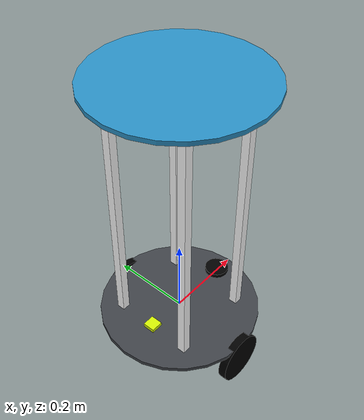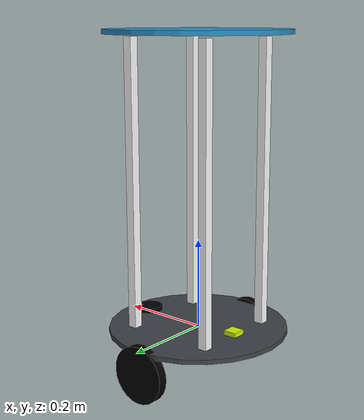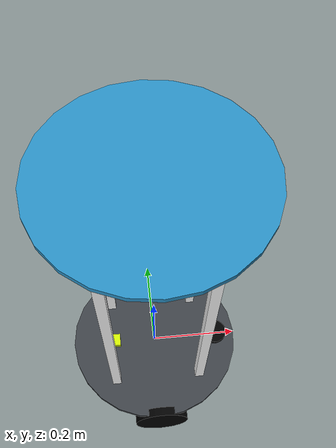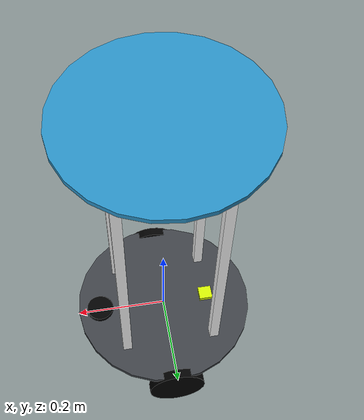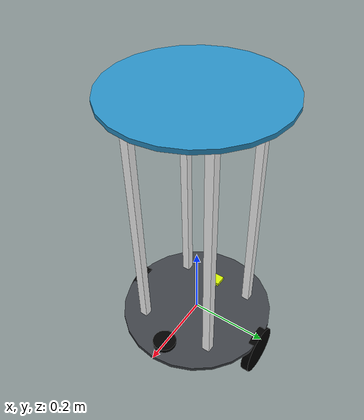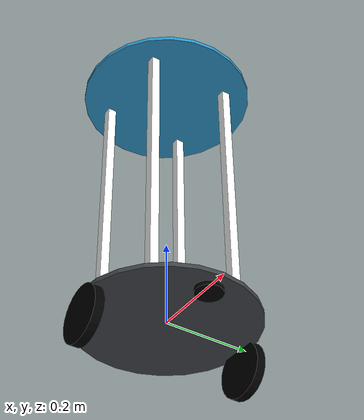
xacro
<?xml version="1.0"?>
<robot name="robot" xmlns:xacro="http://ros.org/wiki/xacro">
  <!-- Base footprint -->
  <link name="base_footprint" />

  <joint name="base_joint" type="fixed">
    <parent link="base_footprint" />
    <child link="base_link" />
    <origin xyz="0 0 0" rpy="0 0 0" />
  </joint>

  <link name="base_link">
    <visual>
      <origin xyz="0 0 0" rpy="0 0 0" />
      <geometry>
        <cylinder radius="0.2" length="0.01" />
      </geometry>
      <material name="base_link_material">
        <color rgba="0.246 0.262 0.283 1" />
      </material>
    </visual>
    <collision>
      <origin xyz="0 0 0" rpy="0 0 0" />
      <geometry>
        <cylinder radius="0.2" length="0.01" />
      </geometry>
    </collision>
    <inertial>
      <origin xyz="0 0 0" rpy="0 0 0" />
      <mass value="0.1" />
      <inertia ixx="0.001" ixy="0" ixz="0" iyy="0.001" iyz="0" izz="0.001" />
    </inertial>
  </link>

  <xacro:macro name="add_box_pillar" params="name x y z">
    <joint name="base_link_to_${name}" type="fixed">
      <parent link="base_link" />
      <child link="${name}" />
      <origin xyz="${x} ${y} ${z}" rpy="0 0 0" />
    </joint>
    <link name="${name}">
      <visual>
        <origin xyz="0 0 0" rpy="0 0 0" />
        <geometry>
          <box size="0.02 0.02 0.64" />
        </geometry>
        <material name="${name}_material">
          <color rgba="1 1 1 1" />
        </material>
      </visual>
    </link>
  </xacro:macro>

  <!-- radar -->
    <joint name="base_link_to_radar" type="fixed">
      <parent link="base_link" />
      <child link="radar" />
    <origin xyz="0.15 0 0" rpy="0 0 0" />
  </joint>
  <link name="imu">
    <visual>
      <origin xyz="0 0 0" rpy="0 0 0" />
      <geometry>
        <box size="0.03 0.03 0.01" />
      </geometry>
      <material name="radar_material">
        <color rgba="0.84 0.96 0.01 1" />
      </material>
    </visual>
  </link>

  <!-- imu -->
  <joint name="base_link_to_imu" type="fixed">
    <parent link="base_link" />
    <child link="imu" />
    <origin xyz="-0.1 0 0.01" rpy="0 0 0" />
  </joint>
  <link name="radar">
    <visual>
      <origin xyz="0 0 0" rpy="0 0 0" />
      <geometry>
        <cylinder radius="0.03" length="0.03" />
      </geometry>
      <material name="imu_material">
        <color rgba="0 0 0 1" />
      </material>
    </visual>
  </link>

  <!-- Wheels -->
  <xacro:macro name="wheel" params="side y">
    <!-- 设置转轴方向：右轮需要反转 -->
    <xacro:if value="${side == 'right'}">
      <xacro:property name="axis_dir" value="1"/>
    </xacro:if>
    <xacro:if value="${side == 'left'}">
      <xacro:property name="axis_dir" value="1"/>
    </xacro:if>

    <!-- 轮子关节 -->
    <joint name="base_link_to_${side}_wheel" type="continuous">
      <parent link="base_link" />
      <child link="${side}_wheel" />
      <origin xyz="0 ${y} -0.05" rpy="0 0 0"/> <!-- 0.063 为轮子半径，避免穿地 -->
      <axis xyz="0 ${axis_dir} 0"/>
    </joint>

    <!-- 轮子模型 -->
    <link name="${side}_wheel">
      <visual>
        <origin xyz="0 0 0" rpy="1.57079 0 0" /> <!-- 绕 X 轴转 90° 躺平 -->
        <geometry>
          <cylinder radius="0.063" length="0.02" />
        </geometry>
        <material name="${side}_wheel_material">
          <color rgba="0 0 0 1" />
        </material>
      </visual>
    </link>
  </xacro:macro>

  <!-- 调用左右轮 -->
  <xacro:wheel side="left" y="0.19"/>
  <xacro:wheel side="right" y="-0.19"/>

  <!-- Top Plate -->
  <joint name="base_link_to_top" type="fixed">
    <parent link="base_link" />
    <child link="top" />
    <origin xyz="0 0 0.65" rpy="0 0 0" />
  </joint>
  <link name="top">
    <visual>
      <origin xyz="0 0 0" rpy="0 0 0" />
      <geometry>
        <cylinder radius="0.2" length="0.01" />
      </geometry>
      <material name="top_material">
        <color rgba="0.168 0.571 0.776 1" />
      </material>
    </visual>
  </link>

  <!-- Pillars -->
  <xacro:add_box_pillar name="pillar1" x="0.1" y="0.1" z="0.32"/>
  <xacro:add_box_pillar name="pillar2" x="-0.1" y="0.1" z="0.32"/>
  <xacro:add_box_pillar name="pillar3" x="0.1" y="-0.1" z="0.32"/>
  <xacro:add_box_pillar name="pillar4" x="-0.1" y="-0.1" z="0.32"/>
</robot>
